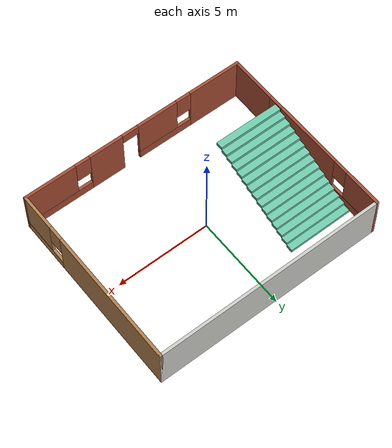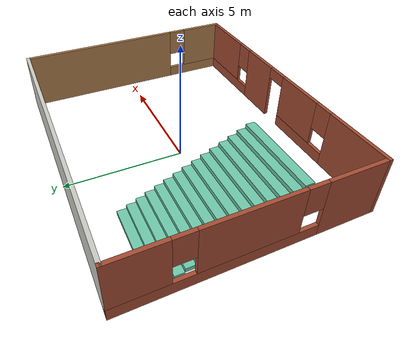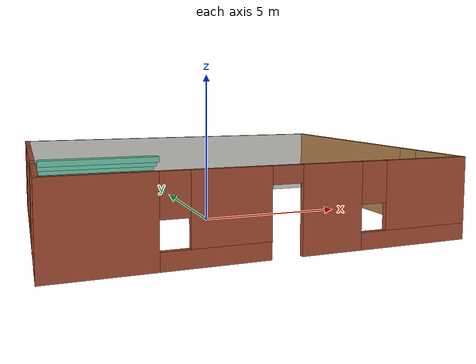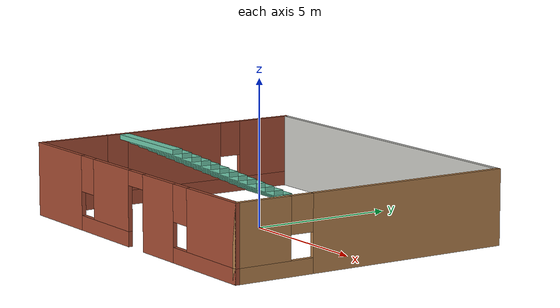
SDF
<?xml version='1.0'?>
<sdf version='1.6'>
  <model name='house'>
    <pose frame=''>0.289016 -0.047896 0 0 -0 0</pose>
    <link name='Stairs_1'>
      <visual name='Stairs_1_Visual_0'>
        <pose frame=''>-4.19043 3.35201 0.083333 0 -0 0</pose>
        <geometry>
          <box>
            <size>3.47382 0.366334 0.166667</size>
          </box>
        </geometry>
        <material>
          <script>
            <uri>file://media/materials/scripts/gazebo.material</uri>
            <name>Gazebo/Grey</name>
          </script>
          <ambient>0.435294 0.796078 0.67451 1</ambient>
        </material>
        <meta>
          <layer>0</layer>
        </meta>
      </visual>
      <collision name='Stairs_1_Collision_0'>
        <geometry>
          <box>
            <size>3.47382 0.366334 0.166667</size>
          </box>
        </geometry>
        <pose frame=''>-4.19043 3.35201 0.083333 0 -0 0</pose>
      </collision>
      <visual name='Stairs_1_Visual_1'>
        <pose frame=''>-4.19043 2.98567 0.25 0 -0 0</pose>
        <geometry>
          <box>
            <size>3.47382 0.366334 0.166667</size>
          </box>
        </geometry>
        <material>
          <script>
            <uri>file://media/materials/scripts/gazebo.material</uri>
            <name>Gazebo/Grey</name>
          </script>
          <ambient>0.435294 0.796078 0.67451 1</ambient>
        </material>
        <meta>
          <layer>0</layer>
        </meta>
      </visual>
      <collision name='Stairs_1_Collision_1'>
        <geometry>
          <box>
            <size>3.47382 0.366334 0.166667</size>
          </box>
        </geometry>
        <pose frame=''>-4.19043 2.98567 0.25 0 -0 0</pose>
      </collision>
      <visual name='Stairs_1_Visual_2'>
        <pose frame=''>-4.19043 2.61934 0.416667 0 -0 0</pose>
        <geometry>
          <box>
            <size>3.47382 0.366334 0.166667</size>
          </box>
        </geometry>
        <material>
          <script>
            <uri>file://media/materials/scripts/gazebo.material</uri>
            <name>Gazebo/Grey</name>
          </script>
          <ambient>0.435294 0.796078 0.67451 1</ambient>
        </material>
        <meta>
          <layer>0</layer>
        </meta>
      </visual>
      <collision name='Stairs_1_Collision_2'>
        <geometry>
          <box>
            <size>3.47382 0.366334 0.166667</size>
          </box>
        </geometry>
        <pose frame=''>-4.19043 2.61934 0.416667 0 -0 0</pose>
      </collision>
      <visual name='Stairs_1_Visual_3'>
        <pose frame=''>-4.19043 2.253 0.583333 0 -0 0</pose>
        <geometry>
          <box>
            <size>3.47382 0.366334 0.166667</size>
          </box>
        </geometry>
        <material>
          <script>
            <uri>file://media/materials/scripts/gazebo.material</uri>
            <name>Gazebo/Grey</name>
          </script>
          <ambient>0.435294 0.796078 0.67451 1</ambient>
        </material>
        <meta>
          <layer>0</layer>
        </meta>
      </visual>
      <collision name='Stairs_1_Collision_3'>
        <geometry>
          <box>
            <size>3.47382 0.366334 0.166667</size>
          </box>
        </geometry>
        <pose frame=''>-4.19043 2.253 0.583333 0 -0 0</pose>
      </collision>
      <visual name='Stairs_1_Visual_4'>
        <pose frame=''>-4.19043 1.88667 0.75 0 -0 0</pose>
        <geometry>
          <box>
            <size>3.47382 0.366334 0.166667</size>
          </box>
        </geometry>
        <material>
          <script>
            <uri>file://media/materials/scripts/gazebo.material</uri>
            <name>Gazebo/Grey</name>
          </script>
          <ambient>0.435294 0.796078 0.67451 1</ambient>
        </material>
        <meta>
          <layer>0</layer>
        </meta>
      </visual>
      <collision name='Stairs_1_Collision_4'>
        <geometry>
          <box>
            <size>3.47382 0.366334 0.166667</size>
          </box>
        </geometry>
        <pose frame=''>-4.19043 1.88667 0.75 0 -0 0</pose>
      </collision>
      <visual name='Stairs_1_Visual_5'>
        <pose frame=''>-4.19043 1.52033 0.916667 0 -0 0</pose>
        <geometry>
          <box>
            <size>3.47382 0.366334 0.166667</size>
          </box>
        </geometry>
        <material>
          <script>
            <uri>file://media/materials/scripts/gazebo.material</uri>
            <name>Gazebo/Grey</name>
          </script>
          <ambient>0.435294 0.796078 0.67451 1</ambient>
        </material>
        <meta>
          <layer>0</layer>
        </meta>
      </visual>
      <collision name='Stairs_1_Collision_5'>
        <geometry>
          <box>
            <size>3.47382 0.366334 0.166667</size>
          </box>
        </geometry>
        <pose frame=''>-4.19043 1.52033 0.916667 0 -0 0</pose>
      </collision>
      <visual name='Stairs_1_Visual_6'>
        <pose frame=''>-4.19043 1.154 1.08333 0 -0 0</pose>
        <geometry>
          <box>
            <size>3.47382 0.366334 0.166667</size>
          </box>
        </geometry>
        <material>
          <script>
            <uri>file://media/materials/scripts/gazebo.material</uri>
            <name>Gazebo/Grey</name>
          </script>
          <ambient>0.435294 0.796078 0.67451 1</ambient>
        </material>
        <meta>
          <layer>0</layer>
        </meta>
      </visual>
      <collision name='Stairs_1_Collision_6'>
        <geometry>
          <box>
            <size>3.47382 0.366334 0.166667</size>
          </box>
        </geometry>
        <pose frame=''>-4.19043 1.154 1.08333 0 -0 0</pose>
      </collision>
      <visual name='Stairs_1_Visual_7'>
        <pose frame=''>-4.19043 0.787667 1.25 0 -0 0</pose>
        <geometry>
          <box>
            <size>3.47382 0.366334 0.166667</size>
          </box>
        </geometry>
        <material>
          <script>
            <uri>file://media/materials/scripts/gazebo.material</uri>
            <name>Gazebo/Grey</name>
          </script>
          <ambient>0.435294 0.796078 0.67451 1</ambient>
        </material>
        <meta>
          <layer>0</layer>
        </meta>
      </visual>
      <collision name='Stairs_1_Collision_7'>
        <geometry>
          <box>
            <size>3.47382 0.366334 0.166667</size>
          </box>
        </geometry>
        <pose frame=''>-4.19043 0.787667 1.25 0 -0 0</pose>
      </collision>
      <visual name='Stairs_1_Visual_8'>
        <pose frame=''>-4.19043 0.421332 1.41667 0 -0 0</pose>
        <geometry>
          <box>
            <size>3.47382 0.366334 0.166667</size>
          </box>
        </geometry>
        <material>
          <script>
            <uri>file://media/materials/scripts/gazebo.material</uri>
            <name>Gazebo/Grey</name>
          </script>
          <ambient>0.435294 0.796078 0.67451 1</ambient>
        </material>
        <meta>
          <layer>0</layer>
        </meta>
      </visual>
      <collision name='Stairs_1_Collision_8'>
        <geometry>
          <box>
            <size>3.47382 0.366334 0.166667</size>
          </box>
        </geometry>
        <pose frame=''>-4.19043 0.421332 1.41667 0 -0 0</pose>
      </collision>
      <visual name='Stairs_1_Visual_9'>
        <pose frame=''>-4.19043 0.054998 1.58333 0 -0 0</pose>
        <geometry>
          <box>
            <size>3.47382 0.366334 0.166667</size>
          </box>
        </geometry>
        <material>
          <script>
            <uri>file://media/materials/scripts/gazebo.material</uri>
            <name>Gazebo/Grey</name>
          </script>
          <ambient>0.435294 0.796078 0.67451 1</ambient>
        </material>
        <meta>
          <layer>0</layer>
        </meta>
      </visual>
      <collision name='Stairs_1_Collision_9'>
        <geometry>
          <box>
            <size>3.47382 0.366334 0.166667</size>
          </box>
        </geometry>
        <pose frame=''>-4.19043 0.054998 1.58333 0 -0 0</pose>
      </collision>
      <visual name='Stairs_1_Visual_10'>
        <pose frame=''>-4.19043 -0.311336 1.75 0 -0 0</pose>
        <geometry>
          <box>
            <size>3.47382 0.366334 0.166667</size>
          </box>
        </geometry>
        <material>
          <script>
            <uri>file://media/materials/scripts/gazebo.material</uri>
            <name>Gazebo/Grey</name>
          </script>
          <ambient>0.435294 0.796078 0.67451 1</ambient>
        </material>
        <meta>
          <layer>0</layer>
        </meta>
      </visual>
      <collision name='Stairs_1_Collision_10'>
        <geometry>
          <box>
            <size>3.47382 0.366334 0.166667</size>
          </box>
        </geometry>
        <pose frame=''>-4.19043 -0.311336 1.75 0 -0 0</pose>
      </collision>
      <visual name='Stairs_1_Visual_11'>
        <pose frame=''>-4.19043 -0.677671 1.91667 0 -0 0</pose>
        <geometry>
          <box>
            <size>3.47382 0.366334 0.166667</size>
          </box>
        </geometry>
        <material>
          <script>
            <uri>file://media/materials/scripts/gazebo.material</uri>
            <name>Gazebo/Grey</name>
          </script>
          <ambient>0.435294 0.796078 0.67451 1</ambient>
        </material>
        <meta>
          <layer>0</layer>
        </meta>
      </visual>
      <collision name='Stairs_1_Collision_11'>
        <geometry>
          <box>
            <size>3.47382 0.366334 0.166667</size>
          </box>
        </geometry>
        <pose frame=''>-4.19043 -0.677671 1.91667 0 -0 0</pose>
      </collision>
      <visual name='Stairs_1_Visual_12'>
        <pose frame=''>-4.19043 -1.04401 2.08333 0 -0 0</pose>
        <geometry>
          <box>
            <size>3.47382 0.366334 0.166667</size>
          </box>
        </geometry>
        <material>
          <script>
            <uri>file://media/materials/scripts/gazebo.material</uri>
            <name>Gazebo/Grey</name>
          </script>
          <ambient>0.435294 0.796078 0.67451 1</ambient>
        </material>
        <meta>
          <layer>0</layer>
        </meta>
      </visual>
      <collision name='Stairs_1_Collision_12'>
        <geometry>
          <box>
            <size>3.47382 0.366334 0.166667</size>
          </box>
        </geometry>
        <pose frame=''>-4.19043 -1.04401 2.08333 0 -0 0</pose>
      </collision>
      <visual name='Stairs_1_Visual_13'>
        <pose frame=''>-4.19043 -1.41034 2.25 0 -0 0</pose>
        <geometry>
          <box>
            <size>3.47382 0.366334 0.166667</size>
          </box>
        </geometry>
        <material>
          <script>
            <uri>file://media/materials/scripts/gazebo.material</uri>
            <name>Gazebo/Grey</name>
          </script>
          <ambient>0.435294 0.796078 0.67451 1</ambient>
        </material>
        <meta>
          <layer>0</layer>
        </meta>
      </visual>
      <collision name='Stairs_1_Collision_13'>
        <geometry>
          <box>
            <size>3.47382 0.366334 0.166667</size>
          </box>
        </geometry>
        <pose frame=''>-4.19043 -1.41034 2.25 0 -0 0</pose>
      </collision>
      <visual name='Stairs_1_Visual_14'>
        <pose frame=''>-4.19043 -1.77667 2.41667 0 -0 0</pose>
        <geometry>
          <box>
            <size>3.47382 0.366334 0.166667</size>
          </box>
        </geometry>
        <material>
          <script>
            <uri>file://media/materials/scripts/gazebo.material</uri>
            <name>Gazebo/Grey</name>
          </script>
          <ambient>0.435294 0.796078 0.67451 1</ambient>
        </material>
        <meta>
          <layer>0</layer>
        </meta>
      </visual>
      <collision name='Stairs_1_Collision_14'>
        <geometry>
          <box>
            <size>3.47382 0.366334 0.166667</size>
          </box>
        </geometry>
        <pose frame=''>-4.19043 -1.77667 2.41667 0 -0 0</pose>
      </collision>
    </link>
    <link name='Wall_0'>
      <pose frame=''>-6.05 0 0 0 -0 1.5708</pose>
      <visual name='Wall_0_Visual_0'>
        <pose frame=''>-3.71329 0 1.25 0 -0 0</pose>
        <geometry>
          <box>
            <size>2.57341 0.15 2.5</size>
          </box>
        </geometry>
        <material>
          <script>
            <uri>file://media/materials/scripts/gazebo.material</uri>
            <name>Gazebo/Bricks</name>
          </script>
          <ambient>1 1 1 1</ambient>
        </material>
        <meta>
          <layer>0</layer>
        </meta>
      </visual>
      <collision name='Wall_0_Collision_0'>
        <geometry>
          <box>
            <size>2.57341 0.15 2.5</size>
          </box>
        </geometry>
        <pose frame=''>-3.71329 0 1.25 0 -0 0</pose>
      </collision>
      <visual name='Wall_0_Visual_1'>
        <pose frame=''>1.28671 0 0.25 0 -0 0</pose>
        <geometry>
          <box>
            <size>7.42659 0.15 0.5</size>
          </box>
        </geometry>
        <material>
          <script>
            <uri>file://media/materials/scripts/gazebo.material</uri>
            <name>Gazebo/Bricks</name>
          </script>
          <ambient>1 1 1 1</ambient>
        </material>
        <meta>
          <layer>0</layer>
        </meta>
      </visual>
      <collision name='Wall_0_Collision_1'>
        <geometry>
          <box>
            <size>7.42659 0.15 0.5</size>
          </box>
        </geometry>
        <pose frame=''>1.28671 0 0.25 0 -0 0</pose>
      </collision>
      <visual name='Wall_0_Visual_2'>
        <pose frame=''>0.25178 0 1.5 0 -0 0</pose>
        <geometry>
          <box>
            <size>3.75673 0.15 2</size>
          </box>
        </geometry>
        <material>
          <script>
            <uri>file://media/materials/scripts/gazebo.material</uri>
            <name>Gazebo/Bricks</name>
          </script>
          <ambient>1 1 1 1</ambient>
        </material>
        <meta>
          <layer>0</layer>
        </meta>
      </visual>
      <collision name='Wall_0_Collision_2'>
        <geometry>
          <box>
            <size>3.75673 0.15 2</size>
          </box>
        </geometry>
        <pose frame=''>0.25178 0 1.5 0 -0 0</pose>
      </collision>
      <visual name='Wall_0_Visual_3'>
        <pose frame=''>3.96507 0 1.5 0 -0 0</pose>
        <geometry>
          <box>
            <size>2.06986 0.15 2</size>
          </box>
        </geometry>
        <material>
          <script>
            <uri>file://media/materials/scripts/gazebo.material</uri>
            <name>Gazebo/Bricks</name>
          </script>
          <ambient>1 1 1 1</ambient>
        </material>
        <meta>
          <layer>0</layer>
        </meta>
      </visual>
      <collision name='Wall_0_Collision_3'>
        <geometry>
          <box>
            <size>2.06986 0.15 2</size>
          </box>
        </geometry>
        <pose frame=''>3.96507 0 1.5 0 -0 0</pose>
      </collision>
      <visual name='Wall_0_Visual_4'>
        <pose frame=''>-2.02658 0 1.9 0 -0 0</pose>
        <geometry>
          <box>
            <size>0.8 0.15 1.2</size>
          </box>
        </geometry>
        <material>
          <script>
            <uri>file://media/materials/scripts/gazebo.material</uri>
            <name>Gazebo/Bricks</name>
          </script>
          <ambient>1 1 1 1</ambient>
        </material>
        <meta>
          <layer>0</layer>
        </meta>
      </visual>
      <collision name='Wall_0_Collision_4'>
        <geometry>
          <box>
            <size>0.8 0.15 1.2</size>
          </box>
        </geometry>
        <pose frame=''>-2.02658 0 1.9 0 -0 0</pose>
      </collision>
      <visual name='Wall_0_Visual_5'>
        <pose frame=''>2.53014 0 1.9 0 -0 0</pose>
        <geometry>
          <box>
            <size>0.8 0.15 1.2</size>
          </box>
        </geometry>
        <material>
          <script>
            <uri>file://media/materials/scripts/gazebo.material</uri>
            <name>Gazebo/Bricks</name>
          </script>
          <ambient>1 1 1 1</ambient>
        </material>
        <meta>
          <layer>0</layer>
        </meta>
      </visual>
      <collision name='Wall_0_Collision_5'>
        <geometry>
          <box>
            <size>0.8 0.15 1.2</size>
          </box>
        </geometry>
        <pose frame=''>2.53014 0 1.9 0 -0 0</pose>
      </collision>
    </link>
    <link name='Wall_3'>
      <pose frame=''>-0 -4.925 0 0 -0 0</pose>
      <visual name='Wall_3_Visual_0'>
        <pose frame=''>-4.66649 0 1.25 0 -0 0</pose>
        <geometry>
          <box>
            <size>2.91702 0.15 2.5</size>
          </box>
        </geometry>
        <material>
          <script>
            <uri>file://media/materials/scripts/gazebo.material</uri>
            <name>Gazebo/Bricks</name>
          </script>
          <ambient>1 1 1 1</ambient>
        </material>
        <meta>
          <layer>0</layer>
        </meta>
      </visual>
      <collision name='Wall_3_Collision_0'>
        <geometry>
          <box>
            <size>2.91702 0.15 2.5</size>
          </box>
        </geometry>
        <pose frame=''>-4.66649 0 1.25 0 -0 0</pose>
      </collision>
      <visual name='Wall_3_Visual_1'>
        <pose frame=''>1.63497 0 1.25 0 -0 0</pose>
        <geometry>
          <box>
            <size>1.83315 0.15 2.5</size>
          </box>
        </geometry>
        <material>
          <script>
            <uri>file://media/materials/scripts/gazebo.material</uri>
            <name>Gazebo/Bricks</name>
          </script>
          <ambient>1 1 1 1</ambient>
        </material>
        <meta>
          <layer>0</layer>
        </meta>
      </visual>
      <collision name='Wall_3_Collision_1'>
        <geometry>
          <box>
            <size>1.83315 0.15 2.5</size>
          </box>
        </geometry>
        <pose frame=''>1.63497 0 1.25 0 -0 0</pose>
      </collision>
      <visual name='Wall_3_Visual_2'>
        <pose frame=''>-1.69479 0 0.25 0 -0 0</pose>
        <geometry>
          <box>
            <size>3.02637 0.15 0.5</size>
          </box>
        </geometry>
        <material>
          <script>
            <uri>file://media/materials/scripts/gazebo.material</uri>
            <name>Gazebo/Bricks</name>
          </script>
          <ambient>1 1 1 1</ambient>
        </material>
        <meta>
          <layer>0</layer>
        </meta>
      </visual>
      <collision name='Wall_3_Collision_2'>
        <geometry>
          <box>
            <size>3.02637 0.15 0.5</size>
          </box>
        </geometry>
        <pose frame=''>-1.69479 0 0.25 0 -0 0</pose>
      </collision>
      <visual name='Wall_3_Visual_3'>
        <pose frame=''>4.33827 0 0.25 0 -0 0</pose>
        <geometry>
          <box>
            <size>3.57346 0.15 0.5</size>
          </box>
        </geometry>
        <material>
          <script>
            <uri>file://media/materials/scripts/gazebo.material</uri>
            <name>Gazebo/Bricks</name>
          </script>
          <ambient>1 1 1 1</ambient>
        </material>
        <meta>
          <layer>0</layer>
        </meta>
      </visual>
      <collision name='Wall_3_Collision_3'>
        <geometry>
          <box>
            <size>3.57346 0.15 0.5</size>
          </box>
        </geometry>
        <pose frame=''>4.33827 0 0.25 0 -0 0</pose>
      </collision>
      <visual name='Wall_3_Visual_4'>
        <pose frame=''>-1.29479 0 1.5 0 -0 0</pose>
        <geometry>
          <box>
            <size>2.22637 0.15 2</size>
          </box>
        </geometry>
        <material>
          <script>
            <uri>file://media/materials/scripts/gazebo.material</uri>
            <name>Gazebo/Bricks</name>
          </script>
          <ambient>1 1 1 1</ambient>
        </material>
        <meta>
          <layer>0</layer>
        </meta>
      </visual>
      <collision name='Wall_3_Collision_4'>
        <geometry>
          <box>
            <size>2.22637 0.15 2</size>
          </box>
        </geometry>
        <pose frame=''>-1.29479 0 1.5 0 -0 0</pose>
      </collision>
      <visual name='Wall_3_Visual_5'>
        <pose frame=''>-1.29479 0 1.5 0 -0 0</pose>
        <geometry>
          <box>
            <size>2.22637 0.15 2</size>
          </box>
        </geometry>
        <material>
          <script>
            <uri>file://media/materials/scripts/gazebo.material</uri>
            <name>Gazebo/Bricks</name>
          </script>
          <ambient>1 1 1 1</ambient>
        </material>
        <meta>
          <layer>0</layer>
        </meta>
      </visual>
      <collision name='Wall_3_Collision_5'>
        <geometry>
          <box>
            <size>2.22637 0.15 2</size>
          </box>
        </geometry>
        <pose frame=''>-1.29479 0 1.5 0 -0 0</pose>
      </collision>
      <visual name='Wall_3_Visual_6'>
        <pose frame=''>4.73827 0 1.5 0 -0 0</pose>
        <geometry>
          <box>
            <size>2.77346 0.15 2</size>
          </box>
        </geometry>
        <material>
          <script>
            <uri>file://media/materials/scripts/gazebo.material</uri>
            <name>Gazebo/Bricks</name>
          </script>
          <ambient>1 1 1 1</ambient>
        </material>
        <meta>
          <layer>0</layer>
        </meta>
      </visual>
      <collision name='Wall_3_Collision_6'>
        <geometry>
          <box>
            <size>2.77346 0.15 2</size>
          </box>
        </geometry>
        <pose frame=''>4.73827 0 1.5 0 -0 0</pose>
      </collision>
      <visual name='Wall_3_Visual_7'>
        <pose frame=''>-2.80798 0 1.9 0 -0 0</pose>
        <geometry>
          <box>
            <size>0.8 0.15 1.2</size>
          </box>
        </geometry>
        <material>
          <script>
            <uri>file://media/materials/scripts/gazebo.material</uri>
            <name>Gazebo/Bricks</name>
          </script>
          <ambient>1 1 1 1</ambient>
        </material>
        <meta>
          <layer>0</layer>
        </meta>
      </visual>
      <collision name='Wall_3_Collision_7'>
        <geometry>
          <box>
            <size>0.8 0.15 1.2</size>
          </box>
        </geometry>
        <pose frame=''>-2.80798 0 1.9 0 -0 0</pose>
      </collision>
      <visual name='Wall_3_Visual_8'>
        <pose frame=''>2.95154 0 1.9 0 -0 0</pose>
        <geometry>
          <box>
            <size>0.8 0.15 1.2</size>
          </box>
        </geometry>
        <material>
          <script>
            <uri>file://media/materials/scripts/gazebo.material</uri>
            <name>Gazebo/Bricks</name>
          </script>
          <ambient>1 1 1 1</ambient>
        </material>
        <meta>
          <layer>0</layer>
        </meta>
      </visual>
      <collision name='Wall_3_Collision_8'>
        <geometry>
          <box>
            <size>0.8 0.15 1.2</size>
          </box>
        </geometry>
        <pose frame=''>2.95154 0 1.9 0 -0 0</pose>
      </collision>
      <visual name='Wall_3_Visual_9'>
        <pose frame=''>0.268394 0 2.25 0 -0 0</pose>
        <geometry>
          <box>
            <size>0.9 0.15 0.5</size>
          </box>
        </geometry>
        <material>
          <script>
            <uri>file://media/materials/scripts/gazebo.material</uri>
            <name>Gazebo/Bricks</name>
          </script>
          <ambient>1 1 1 1</ambient>
        </material>
        <meta>
          <layer>0</layer>
        </meta>
      </visual>
      <collision name='Wall_3_Collision_9'>
        <geometry>
          <box>
            <size>0.9 0.15 0.5</size>
          </box>
        </geometry>
        <pose frame=''>0.268394 0 2.25 0 -0 0</pose>
      </collision>
      <visual name='Wall_3_Visual_10'>
        <pose frame=''>0.268394 0 2.25 0 -0 0</pose>
        <geometry>
          <box>
            <size>0.9 0.15 0.5</size>
          </box>
        </geometry>
        <material>
          <script>
            <uri>file://media/materials/scripts/gazebo.material</uri>
            <name>Gazebo/Bricks</name>
          </script>
          <ambient>1 1 1 1</ambient>
        </material>
        <meta>
          <layer>0</layer>
        </meta>
      </visual>
      <collision name='Wall_3_Collision_10'>
        <geometry>
          <box>
            <size>0.9 0.15 0.5</size>
          </box>
        </geometry>
        <pose frame=''>0.268394 0 2.25 0 -0 0</pose>
      </collision>
    </link>
    <link name='Wall_5'>
      <collision name='Wall_5_Collision'>
        <geometry>
          <box>
            <size>12.25 0.15 2.5</size>
          </box>
        </geometry>
        <pose frame=''>0 0 1.25 0 -0 0</pose>
      </collision>
      <visual name='Wall_5_Visual'>
        <pose frame=''>0 0 1.25 0 -0 0</pose>
        <geometry>
          <box>
            <size>12.25 0.15 2.5</size>
          </box>
        </geometry>
        <material>
          <script>
            <uri>file://media/materials/scripts/gazebo.material</uri>
            <name>Gazebo/CeilingTiled</name>
          </script>
          <ambient>1 1 1 1</ambient>
        </material>
        <meta>
          <layer>0</layer>
        </meta>
      </visual>
      <pose frame=''>-0 4.925 0 0 -0 0</pose>
    </link>
    <link name='Wall_6'>
      <pose frame=''>6.05 0 0 0 -0 -1.5708</pose>
      <visual name='Wall_6_Visual_0'>
        <pose frame=''>-1.39807 0 1.25 0 -0 0</pose>
        <geometry>
          <box>
            <size>7.20386 0.15 2.5</size>
          </box>
        </geometry>
        <material>
          <script>
            <uri>file://media/materials/scripts/gazebo.material</uri>
            <name>Gazebo/Wood</name>
          </script>
          <ambient>1 1 1 1</ambient>
        </material>
        <meta>
          <layer>0</layer>
        </meta>
      </visual>
      <collision name='Wall_6_Collision_0'>
        <geometry>
          <box>
            <size>7.20386 0.15 2.5</size>
          </box>
        </geometry>
        <pose frame=''>-1.39807 0 1.25 0 -0 0</pose>
      </collision>
      <visual name='Wall_6_Visual_1'>
        <pose frame=''>3.60193 0 0.25 0 -0 0</pose>
        <geometry>
          <box>
            <size>2.79614 0.15 0.5</size>
          </box>
        </geometry>
        <material>
          <script>
            <uri>file://media/materials/scripts/gazebo.material</uri>
            <name>Gazebo/Wood</name>
          </script>
          <ambient>1 1 1 1</ambient>
        </material>
        <meta>
          <layer>0</layer>
        </meta>
      </visual>
      <collision name='Wall_6_Collision_1'>
        <geometry>
          <box>
            <size>2.79614 0.15 0.5</size>
          </box>
        </geometry>
        <pose frame=''>3.60193 0 0.25 0 -0 0</pose>
      </collision>
      <visual name='Wall_6_Visual_2'>
        <pose frame=''>4.00193 0 1.5 0 -0 0</pose>
        <geometry>
          <box>
            <size>1.99614 0.15 2</size>
          </box>
        </geometry>
        <material>
          <script>
            <uri>file://media/materials/scripts/gazebo.material</uri>
            <name>Gazebo/Wood</name>
          </script>
          <ambient>1 1 1 1</ambient>
        </material>
        <meta>
          <layer>0</layer>
        </meta>
      </visual>
      <collision name='Wall_6_Collision_2'>
        <geometry>
          <box>
            <size>1.99614 0.15 2</size>
          </box>
        </geometry>
        <pose frame=''>4.00193 0 1.5 0 -0 0</pose>
      </collision>
      <visual name='Wall_6_Visual_3'>
        <pose frame=''>2.60386 0 1.9 0 -0 0</pose>
        <geometry>
          <box>
            <size>0.8 0.15 1.2</size>
          </box>
        </geometry>
        <material>
          <script>
            <uri>file://media/materials/scripts/gazebo.material</uri>
            <name>Gazebo/Wood</name>
          </script>
          <ambient>1 1 1 1</ambient>
        </material>
        <meta>
          <layer>0</layer>
        </meta>
      </visual>
      <collision name='Wall_6_Collision_3'>
        <geometry>
          <box>
            <size>0.8 0.15 1.2</size>
          </box>
        </geometry>
        <pose frame=''>2.60386 0 1.9 0 -0 0</pose>
      </collision>
    </link>
    <static>1</static>
  </model>
</sdf>
